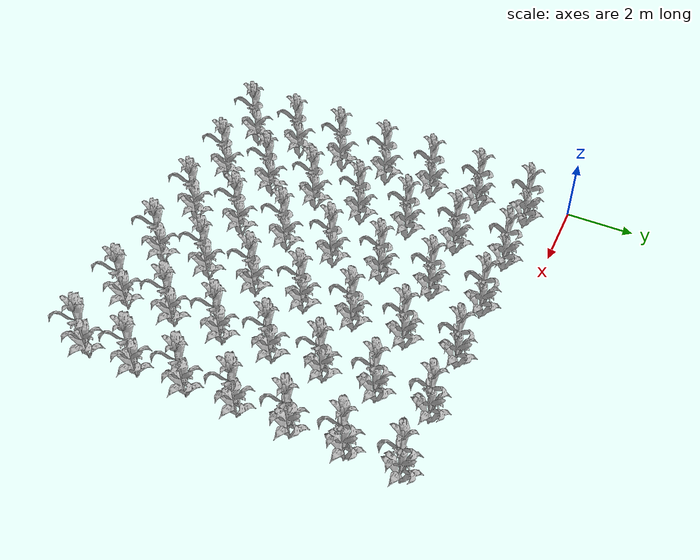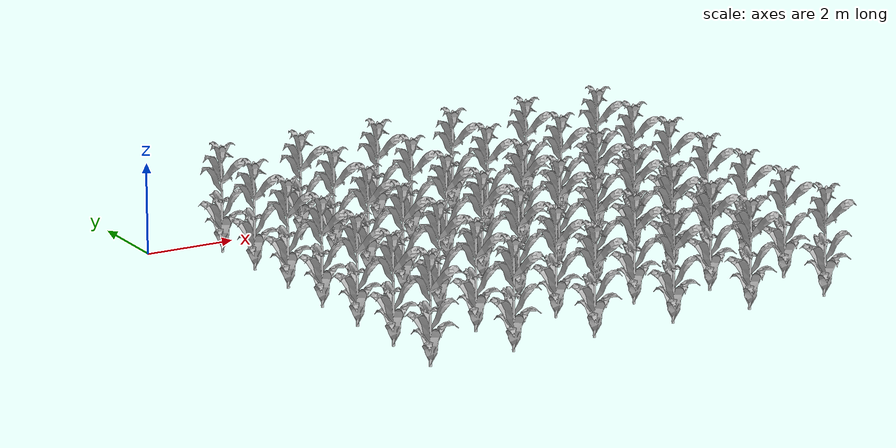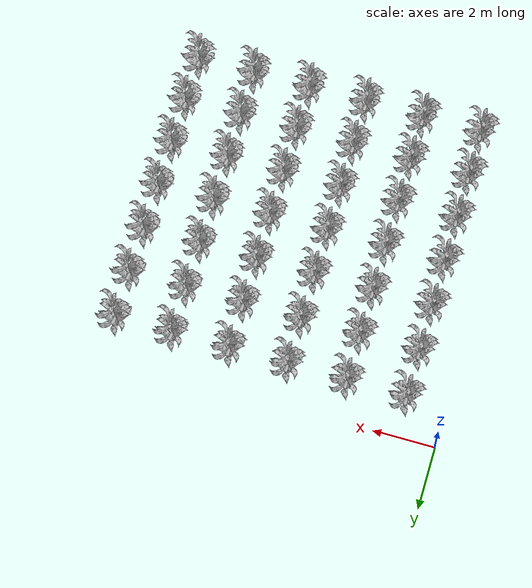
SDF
<sdf version="1.7">
 <world name="default">
  <model name="corn_1.2148646860063206_-10.0">
   <static>1</static>
   <link name="link">
    <inertial>
     <mass>0.2</mass>
     <inertia>
      <ixx>0.166667</ixx>
      <ixy>0</ixy>
      <ixz>0</ixz>
      <iyy>0.166667</iyy>
      <iyz>0</iyz>
      <izz>0.166667</izz>
     </inertia>
    </inertial>
    <collision name="collision">
     <geometry><mesh><uri>model://corn_2/meshes/corn.dae</uri><scale>1 1 1</scale></mesh></geometry>
     <surface>
      <friction><ode><mu>0.0</mu><mu2>0.0</mu2></ode></friction>
      <contact><ode><kp>0.0</kp><kd>0.0</kd><max_vel>0.0</max_vel><min_depth>0.002</min_depth></ode></contact>
     </surface>
    </collision>
    <visual name="visual">
     <geometry><mesh><uri>model://corn_2/meshes/corn.dae</uri><scale>1 1 1</scale></mesh></geometry>
    </visual>
    <velocity_decay><linear>0</linear><angular>0</angular></velocity_decay>
   </link>
   <pose>1.21487 -10 0.15 0 -0 0</pose>
  </model>
  <model name="corn_1.2148646860063206_-8.5">
   <static>1</static>
   <link name="link">
    <inertial>
     <mass>0.2</mass>
     <inertia>
      <ixx>0.166667</ixx>
      <ixy>0</ixy>
      <ixz>0</ixz>
      <iyy>0.166667</iyy>
      <iyz>0</iyz>
      <izz>0.166667</izz>
     </inertia>
    </inertial>
    <collision name="collision">
     <geometry><mesh><uri>model://corn_2/meshes/corn.dae</uri><scale>1 1 1</scale></mesh></geometry>
     <surface>
      <friction><ode><mu>0.0</mu><mu2>0.0</mu2></ode></friction>
      <contact><ode><kp>0.0</kp><kd>0.0</kd><max_vel>0.0</max_vel><min_depth>0.002</min_depth></ode></contact>
     </surface>
    </collision>
    <visual name="visual">
     <geometry><mesh><uri>model://corn_2/meshes/corn.dae</uri><scale>1 1 1</scale></mesh></geometry>
    </visual>
    <velocity_decay><linear>0</linear><angular>0</angular></velocity_decay>
   </link>
   <pose>1.21487 -8.5 0.15 0 -0 0</pose>
  </model>
  <model name="corn_1.2148646860063206_-7.0">
   <static>1</static>
   <link name="link">
    <inertial>
     <mass>0.2</mass>
     <inertia>
      <ixx>0.166667</ixx>
      <ixy>0</ixy>
      <ixz>0</ixz>
      <iyy>0.166667</iyy>
      <iyz>0</iyz>
      <izz>0.166667</izz>
     </inertia>
    </inertial>
    <collision name="collision">
     <geometry><mesh><uri>model://corn_2/meshes/corn.dae</uri><scale>1 1 1</scale></mesh></geometry>
     <surface>
      <friction><ode><mu>0.0</mu><mu2>0.0</mu2></ode></friction>
      <contact><ode><kp>0.0</kp><kd>0.0</kd><max_vel>0.0</max_vel><min_depth>0.002</min_depth></ode></contact>
     </surface>
    </collision>
    <visual name="visual">
     <geometry><mesh><uri>model://corn_2/meshes/corn.dae</uri><scale>1 1 1</scale></mesh></geometry>
    </visual>
    <velocity_decay><linear>0</linear><angular>0</angular></velocity_decay>
   </link>
   <pose>1.21487 -7 0.15 0 -0 0</pose>
  </model>
  <model name="corn_1.2148646860063206_-5.5">
   <static>1</static>
   <link name="link">
    <inertial>
     <mass>0.2</mass>
     <inertia>
      <ixx>0.166667</ixx>
      <ixy>0</ixy>
      <ixz>0</ixz>
      <iyy>0.166667</iyy>
      <iyz>0</iyz>
      <izz>0.166667</izz>
     </inertia>
    </inertial>
    <collision name="collision">
     <geometry><mesh><uri>model://corn_2/meshes/corn.dae</uri><scale>1 1 1</scale></mesh></geometry>
     <surface>
      <friction><ode><mu>0.0</mu><mu2>0.0</mu2></ode></friction>
      <contact><ode><kp>0.0</kp><kd>0.0</kd><max_vel>0.0</max_vel><min_depth>0.002</min_depth></ode></contact>
     </surface>
    </collision>
    <visual name="visual">
     <geometry><mesh><uri>model://corn_2/meshes/corn.dae</uri><scale>1 1 1</scale></mesh></geometry>
    </visual>
    <velocity_decay><linear>0</linear><angular>0</angular></velocity_decay>
   </link>
   <pose>1.21487 -5.5 0.15 0 -0 0</pose>
  </model>
  <model name="corn_1.2148646860063206_-4.0">
   <static>1</static>
   <link name="link">
    <inertial>
     <mass>0.2</mass>
     <inertia>
      <ixx>0.166667</ixx>
      <ixy>0</ixy>
      <ixz>0</ixz>
      <iyy>0.166667</iyy>
      <iyz>0</iyz>
      <izz>0.166667</izz>
     </inertia>
    </inertial>
    <collision name="collision">
     <geometry><mesh><uri>model://corn_2/meshes/corn.dae</uri><scale>1 1 1</scale></mesh></geometry>
     <surface>
      <friction><ode><mu>0.0</mu><mu2>0.0</mu2></ode></friction>
      <contact><ode><kp>0.0</kp><kd>0.0</kd><max_vel>0.0</max_vel><min_depth>0.002</min_depth></ode></contact>
     </surface>
    </collision>
    <visual name="visual">
     <geometry><mesh><uri>model://corn_2/meshes/corn.dae</uri><scale>1 1 1</scale></mesh></geometry>
    </visual>
    <velocity_decay><linear>0</linear><angular>0</angular></velocity_decay>
   </link>
   <pose>1.21487 -4 0.15 0 -0 0</pose>
  </model>
  <model name="corn_1.2148646860063206_-2.5">
   <static>1</static>
   <link name="link">
    <inertial>
     <mass>0.2</mass>
     <inertia>
      <ixx>0.166667</ixx>
      <ixy>0</ixy>
      <ixz>0</ixz>
      <iyy>0.166667</iyy>
      <iyz>0</iyz>
      <izz>0.166667</izz>
     </inertia>
    </inertial>
    <collision name="collision">
     <geometry><mesh><uri>model://corn_2/meshes/corn.dae</uri><scale>1 1 1</scale></mesh></geometry>
     <surface>
      <friction><ode><mu>0.0</mu><mu2>0.0</mu2></ode></friction>
      <contact><ode><kp>0.0</kp><kd>0.0</kd><max_vel>0.0</max_vel><min_depth>0.002</min_depth></ode></contact>
     </surface>
    </collision>
    <visual name="visual">
     <geometry><mesh><uri>model://corn_2/meshes/corn.dae</uri><scale>1 1 1</scale></mesh></geometry>
    </visual>
    <velocity_decay><linear>0</linear><angular>0</angular></velocity_decay>
   </link>
   <pose>1.21487 -2.5 0.15 0 -0 0</pose>
  </model>
  <model name="corn_1.2148646860063206_-1.0">
   <static>1</static>
   <link name="link">
    <inertial>
     <mass>0.2</mass>
     <inertia>
      <ixx>0.166667</ixx>
      <ixy>0</ixy>
      <ixz>0</ixz>
      <iyy>0.166667</iyy>
      <iyz>0</iyz>
      <izz>0.166667</izz>
     </inertia>
    </inertial>
    <collision name="collision">
     <geometry><mesh><uri>model://corn_2/meshes/corn.dae</uri><scale>1 1 1</scale></mesh></geometry>
     <surface>
      <friction><ode><mu>0.0</mu><mu2>0.0</mu2></ode></friction>
      <contact><ode><kp>0.0</kp><kd>0.0</kd><max_vel>0.0</max_vel><min_depth>0.002</min_depth></ode></contact>
     </surface>
    </collision>
    <visual name="visual">
     <geometry><mesh><uri>model://corn_2/meshes/corn.dae</uri><scale>1 1 1</scale></mesh></geometry>
    </visual>
    <velocity_decay><linear>0</linear><angular>0</angular></velocity_decay>
   </link>
   <pose>1.21487 -1 0.15 0 -0 0</pose>
  </model>
  <model name="corn_3.1126727651393438_-10.0">
   <static>1</static>
   <link name="link">
    <inertial>
     <mass>0.2</mass>
     <inertia>
      <ixx>0.166667</ixx>
      <ixy>0</ixy>
      <ixz>0</ixz>
      <iyy>0.166667</iyy>
      <iyz>0</iyz>
      <izz>0.166667</izz>
     </inertia>
    </inertial>
    <collision name="collision">
     <geometry><mesh><uri>model://corn_2/meshes/corn.dae</uri><scale>1 1 1</scale></mesh></geometry>
     <surface>
      <friction><ode><mu>0.0</mu><mu2>0.0</mu2></ode></friction>
      <contact><ode><kp>0.0</kp><kd>0.0</kd><max_vel>0.0</max_vel><min_depth>0.002</min_depth></ode></contact>
     </surface>
    </collision>
    <visual name="visual">
     <geometry><mesh><uri>model://corn_2/meshes/corn.dae</uri><scale>1 1 1</scale></mesh></geometry>
    </visual>
    <velocity_decay><linear>0</linear><angular>0</angular></velocity_decay>
   </link>
   <pose>3.11267 -10 0.15 0 -0 0</pose>
  </model>
  <model name="corn_3.1126727651393438_-8.5">
   <static>1</static>
   <link name="link">
    <inertial>
     <mass>0.2</mass>
     <inertia>
      <ixx>0.166667</ixx>
      <ixy>0</ixy>
      <ixz>0</ixz>
      <iyy>0.166667</iyy>
      <iyz>0</iyz>
      <izz>0.166667</izz>
     </inertia>
    </inertial>
    <collision name="collision">
     <geometry><mesh><uri>model://corn_2/meshes/corn.dae</uri><scale>1 1 1</scale></mesh></geometry>
     <surface>
      <friction><ode><mu>0.0</mu><mu2>0.0</mu2></ode></friction>
      <contact><ode><kp>0.0</kp><kd>0.0</kd><max_vel>0.0</max_vel><min_depth>0.002</min_depth></ode></contact>
     </surface>
    </collision>
    <visual name="visual">
     <geometry><mesh><uri>model://corn_2/meshes/corn.dae</uri><scale>1 1 1</scale></mesh></geometry>
    </visual>
    <velocity_decay><linear>0</linear><angular>0</angular></velocity_decay>
   </link>
   <pose>3.11267 -8.5 0.15 0 -0 0</pose>
  </model>
  <model name="corn_3.1126727651393438_-7.0">
   <static>1</static>
   <link name="link">
    <inertial>
     <mass>0.2</mass>
     <inertia>
      <ixx>0.166667</ixx>
      <ixy>0</ixy>
      <ixz>0</ixz>
      <iyy>0.166667</iyy>
      <iyz>0</iyz>
      <izz>0.166667</izz>
     </inertia>
    </inertial>
    <collision name="collision">
     <geometry><mesh><uri>model://corn_2/meshes/corn.dae</uri><scale>1 1 1</scale></mesh></geometry>
     <surface>
      <friction><ode><mu>0.0</mu><mu2>0.0</mu2></ode></friction>
      <contact><ode><kp>0.0</kp><kd>0.0</kd><max_vel>0.0</max_vel><min_depth>0.002</min_depth></ode></contact>
     </surface>
    </collision>
    <visual name="visual">
     <geometry><mesh><uri>model://corn_2/meshes/corn.dae</uri><scale>1 1 1</scale></mesh></geometry>
    </visual>
    <velocity_decay><linear>0</linear><angular>0</angular></velocity_decay>
   </link>
   <pose>3.11267 -7 0.15 0 -0 0</pose>
  </model>
  <model name="corn_3.1126727651393438_-5.5">
   <static>1</static>
   <link name="link">
    <inertial>
     <mass>0.2</mass>
     <inertia>
      <ixx>0.166667</ixx>
      <ixy>0</ixy>
      <ixz>0</ixz>
      <iyy>0.166667</iyy>
      <iyz>0</iyz>
      <izz>0.166667</izz>
     </inertia>
    </inertial>
    <collision name="collision">
     <geometry><mesh><uri>model://corn_2/meshes/corn.dae</uri><scale>1 1 1</scale></mesh></geometry>
     <surface>
      <friction><ode><mu>0.0</mu><mu2>0.0</mu2></ode></friction>
      <contact><ode><kp>0.0</kp><kd>0.0</kd><max_vel>0.0</max_vel><min_depth>0.002</min_depth></ode></contact>
     </surface>
    </collision>
    <visual name="visual">
     <geometry><mesh><uri>model://corn_2/meshes/corn.dae</uri><scale>1 1 1</scale></mesh></geometry>
    </visual>
    <velocity_decay><linear>0</linear><angular>0</angular></velocity_decay>
   </link>
   <pose>3.11267 -5.5 0.15 0 -0 0</pose>
  </model>
  <model name="corn_3.1126727651393438_-4.0">
   <static>1</static>
   <link name="link">
    <inertial>
     <mass>0.2</mass>
     <inertia>
      <ixx>0.166667</ixx>
      <ixy>0</ixy>
      <ixz>0</ixz>
      <iyy>0.166667</iyy>
      <iyz>0</iyz>
      <izz>0.166667</izz>
     </inertia>
    </inertial>
    <collision name="collision">
     <geometry><mesh><uri>model://corn_2/meshes/corn.dae</uri><scale>1 1 1</scale></mesh></geometry>
     <surface>
      <friction><ode><mu>0.0</mu><mu2>0.0</mu2></ode></friction>
      <contact><ode><kp>0.0</kp><kd>0.0</kd><max_vel>0.0</max_vel><min_depth>0.002</min_depth></ode></contact>
     </surface>
    </collision>
    <visual name="visual">
     <geometry><mesh><uri>model://corn_2/meshes/corn.dae</uri><scale>1 1 1</scale></mesh></geometry>
    </visual>
    <velocity_decay><linear>0</linear><angular>0</angular></velocity_decay>
   </link>
   <pose>3.11267 -4 0.15 0 -0 0</pose>
  </model>
  <model name="corn_3.1126727651393438_-2.5">
   <static>1</static>
   <link name="link">
    <inertial>
     <mass>0.2</mass>
     <inertia>
      <ixx>0.166667</ixx>
      <ixy>0</ixy>
      <ixz>0</ixz>
      <iyy>0.166667</iyy>
      <iyz>0</iyz>
      <izz>0.166667</izz>
     </inertia>
    </inertial>
    <collision name="collision">
     <geometry><mesh><uri>model://corn_2/meshes/corn.dae</uri><scale>1 1 1</scale></mesh></geometry>
     <surface>
      <friction><ode><mu>0.0</mu><mu2>0.0</mu2></ode></friction>
      <contact><ode><kp>0.0</kp><kd>0.0</kd><max_vel>0.0</max_vel><min_depth>0.002</min_depth></ode></contact>
     </surface>
    </collision>
    <visual name="visual">
     <geometry><mesh><uri>model://corn_2/meshes/corn.dae</uri><scale>1 1 1</scale></mesh></geometry>
    </visual>
    <velocity_decay><linear>0</linear><angular>0</angular></velocity_decay>
   </link>
   <pose>3.11267 -2.5 0.15 0 -0 0</pose>
  </model>
  <model name="corn_3.1126727651393438_-1.0">
   <static>1</static>
   <link name="link">
    <inertial>
     <mass>0.2</mass>
     <inertia>
      <ixx>0.166667</ixx>
      <ixy>0</ixy>
      <ixz>0</ixz>
      <iyy>0.166667</iyy>
      <iyz>0</iyz>
      <izz>0.166667</izz>
     </inertia>
    </inertial>
    <collision name="collision">
     <geometry><mesh><uri>model://corn_2/meshes/corn.dae</uri><scale>1 1 1</scale></mesh></geometry>
     <surface>
      <friction><ode><mu>0.0</mu><mu2>0.0</mu2></ode></friction>
      <contact><ode><kp>0.0</kp><kd>0.0</kd><max_vel>0.0</max_vel><min_depth>0.002</min_depth></ode></contact>
     </surface>
    </collision>
    <visual name="visual">
     <geometry><mesh><uri>model://corn_2/meshes/corn.dae</uri><scale>1 1 1</scale></mesh></geometry>
    </visual>
    <velocity_decay><linear>0</linear><angular>0</angular></velocity_decay>
   </link>
   <pose>3.11267 -1 0.15 0 -0 0</pose>
  </model>
  <model name="corn_4.995110941804327_-10.0">
   <static>1</static>
   <link name="link">
    <inertial>
     <mass>0.2</mass>
     <inertia>
      <ixx>0.166667</ixx>
      <ixy>0</ixy>
      <ixz>0</ixz>
      <iyy>0.166667</iyy>
      <iyz>0</iyz>
      <izz>0.166667</izz>
     </inertia>
    </inertial>
    <collision name="collision">
     <geometry><mesh><uri>model://corn_2/meshes/corn.dae</uri><scale>1 1 1</scale></mesh></geometry>
     <surface>
      <friction><ode><mu>0.0</mu><mu2>0.0</mu2></ode></friction>
      <contact><ode><kp>0.0</kp><kd>0.0</kd><max_vel>0.0</max_vel><min_depth>0.002</min_depth></ode></contact>
     </surface>
    </collision>
    <visual name="visual">
     <geometry><mesh><uri>model://corn_2/meshes/corn.dae</uri><scale>1 1 1</scale></mesh></geometry>
    </visual>
    <velocity_decay><linear>0</linear><angular>0</angular></velocity_decay>
   </link>
   <pose>4.99511 -10 0.15 0 -0 0</pose>
  </model>
  <model name="corn_4.995110941804327_-8.5">
   <static>1</static>
   <link name="link">
    <inertial>
     <mass>0.2</mass>
     <inertia>
      <ixx>0.166667</ixx>
      <ixy>0</ixy>
      <ixz>0</ixz>
      <iyy>0.166667</iyy>
      <iyz>0</iyz>
      <izz>0.166667</izz>
     </inertia>
    </inertial>
    <collision name="collision">
     <geometry><mesh><uri>model://corn_2/meshes/corn.dae</uri><scale>1 1 1</scale></mesh></geometry>
     <surface>
      <friction><ode><mu>0.0</mu><mu2>0.0</mu2></ode></friction>
      <contact><ode><kp>0.0</kp><kd>0.0</kd><max_vel>0.0</max_vel><min_depth>0.002</min_depth></ode></contact>
     </surface>
    </collision>
    <visual name="visual">
     <geometry><mesh><uri>model://corn_2/meshes/corn.dae</uri><scale>1 1 1</scale></mesh></geometry>
    </visual>
    <velocity_decay><linear>0</linear><angular>0</angular></velocity_decay>
   </link>
   <pose>4.99511 -8.5 0.15 0 -0 0</pose>
  </model>
  <model name="corn_4.995110941804327_-7.0">
   <static>1</static>
   <link name="link">
    <inertial>
     <mass>0.2</mass>
     <inertia>
      <ixx>0.166667</ixx>
      <ixy>0</ixy>
      <ixz>0</ixz>
      <iyy>0.166667</iyy>
      <iyz>0</iyz>
      <izz>0.166667</izz>
     </inertia>
    </inertial>
    <collision name="collision">
     <geometry><mesh><uri>model://corn_2/meshes/corn.dae</uri><scale>1 1 1</scale></mesh></geometry>
     <surface>
      <friction><ode><mu>0.0</mu><mu2>0.0</mu2></ode></friction>
      <contact><ode><kp>0.0</kp><kd>0.0</kd><max_vel>0.0</max_vel><min_depth>0.002</min_depth></ode></contact>
     </surface>
    </collision>
    <visual name="visual">
     <geometry><mesh><uri>model://corn_2/meshes/corn.dae</uri><scale>1 1 1</scale></mesh></geometry>
    </visual>
    <velocity_decay><linear>0</linear><angular>0</angular></velocity_decay>
   </link>
   <pose>4.99511 -7 0.15 0 -0 0</pose>
  </model>
  <model name="corn_4.995110941804327_-5.5">
   <static>1</static>
   <link name="link">
    <inertial>
     <mass>0.2</mass>
     <inertia>
      <ixx>0.166667</ixx>
      <ixy>0</ixy>
      <ixz>0</ixz>
      <iyy>0.166667</iyy>
      <iyz>0</iyz>
      <izz>0.166667</izz>
     </inertia>
    </inertial>
    <collision name="collision">
     <geometry><mesh><uri>model://corn_2/meshes/corn.dae</uri><scale>1 1 1</scale></mesh></geometry>
     <surface>
      <friction><ode><mu>0.0</mu><mu2>0.0</mu2></ode></friction>
      <contact><ode><kp>0.0</kp><kd>0.0</kd><max_vel>0.0</max_vel><min_depth>0.002</min_depth></ode></contact>
     </surface>
    </collision>
    <visual name="visual">
     <geometry><mesh><uri>model://corn_2/meshes/corn.dae</uri><scale>1 1 1</scale></mesh></geometry>
    </visual>
    <velocity_decay><linear>0</linear><angular>0</angular></velocity_decay>
   </link>
   <pose>4.99511 -5.5 0.15 0 -0 0</pose>
  </model>
  <model name="corn_4.995110941804327_-4.0">
   <static>1</static>
   <link name="link">
    <inertial>
     <mass>0.2</mass>
     <inertia>
      <ixx>0.166667</ixx>
      <ixy>0</ixy>
      <ixz>0</ixz>
      <iyy>0.166667</iyy>
      <iyz>0</iyz>
      <izz>0.166667</izz>
     </inertia>
    </inertial>
    <collision name="collision">
     <geometry><mesh><uri>model://corn_2/meshes/corn.dae</uri><scale>1 1 1</scale></mesh></geometry>
     <surface>
      <friction><ode><mu>0.0</mu><mu2>0.0</mu2></ode></friction>
      <contact><ode><kp>0.0</kp><kd>0.0</kd><max_vel>0.0</max_vel><min_depth>0.002</min_depth></ode></contact>
     </surface>
    </collision>
    <visual name="visual">
     <geometry><mesh><uri>model://corn_2/meshes/corn.dae</uri><scale>1 1 1</scale></mesh></geometry>
    </visual>
    <velocity_decay><linear>0</linear><angular>0</angular></velocity_decay>
   </link>
   <pose>4.99511 -4 0.15 0 -0 0</pose>
  </model>
  <model name="corn_4.995110941804327_-2.5">
   <static>1</static>
   <link name="link">
    <inertial>
     <mass>0.2</mass>
     <inertia>
      <ixx>0.166667</ixx>
      <ixy>0</ixy>
      <ixz>0</ixz>
      <iyy>0.166667</iyy>
      <iyz>0</iyz>
      <izz>0.166667</izz>
     </inertia>
    </inertial>
    <collision name="collision">
     <geometry><mesh><uri>model://corn_2/meshes/corn.dae</uri><scale>1 1 1</scale></mesh></geometry>
     <surface>
      <friction><ode><mu>0.0</mu><mu2>0.0</mu2></ode></friction>
      <contact><ode><kp>0.0</kp><kd>0.0</kd><max_vel>0.0</max_vel><min_depth>0.002</min_depth></ode></contact>
     </surface>
    </collision>
    <visual name="visual">
     <geometry><mesh><uri>model://corn_2/meshes/corn.dae</uri><scale>1 1 1</scale></mesh></geometry>
    </visual>
    <velocity_decay><linear>0</linear><angular>0</angular></velocity_decay>
   </link>
   <pose>4.99511 -2.5 0.15 0 -0 0</pose>
  </model>
  <model name="corn_4.995110941804327_-1.0">
   <static>1</static>
   <link name="link">
    <inertial>
     <mass>0.2</mass>
     <inertia>
      <ixx>0.166667</ixx>
      <ixy>0</ixy>
      <ixz>0</ixz>
      <iyy>0.166667</iyy>
      <iyz>0</iyz>
      <izz>0.166667</izz>
     </inertia>
    </inertial>
    <collision name="collision">
     <geometry><mesh><uri>model://corn_2/meshes/corn.dae</uri><scale>1 1 1</scale></mesh></geometry>
     <surface>
      <friction><ode><mu>0.0</mu><mu2>0.0</mu2></ode></friction>
      <contact><ode><kp>0.0</kp><kd>0.0</kd><max_vel>0.0</max_vel><min_depth>0.002</min_depth></ode></contact>
     </surface>
    </collision>
    <visual name="visual">
     <geometry><mesh><uri>model://corn_2/meshes/corn.dae</uri><scale>1 1 1</scale></mesh></geometry>
    </visual>
    <velocity_decay><linear>0</linear><angular>0</angular></velocity_decay>
   </link>
   <pose>4.99511 -1 0.15 0 -0 0</pose>
  </model>
  <model name="corn_6.862271810291748_-10.0">
   <static>1</static>
   <link name="link">
    <inertial>
     <mass>0.2</mass>
     <inertia>
      <ixx>0.166667</ixx>
      <ixy>0</ixy>
      <ixz>0</ixz>
      <iyy>0.166667</iyy>
      <iyz>0</iyz>
      <izz>0.166667</izz>
     </inertia>
    </inertial>
    <collision name="collision">
     <geometry><mesh><uri>model://corn_2/meshes/corn.dae</uri><scale>1 1 1</scale></mesh></geometry>
     <surface>
      <friction><ode><mu>0.0</mu><mu2>0.0</mu2></ode></friction>
      <contact><ode><kp>0.0</kp><kd>0.0</kd><max_vel>0.0</max_vel><min_depth>0.002</min_depth></ode></contact>
     </surface>
    </collision>
    <visual name="visual">
     <geometry><mesh><uri>model://corn_2/meshes/corn.dae</uri><scale>1 1 1</scale></mesh></geometry>
    </visual>
    <velocity_decay><linear>0</linear><angular>0</angular></velocity_decay>
   </link>
   <pose>6.86227 -10 0.15 0 -0 0</pose>
  </model>
  <model name="corn_6.862271810291748_-8.5">
   <static>1</static>
   <link name="link">
    <inertial>
     <mass>0.2</mass>
     <inertia>
      <ixx>0.166667</ixx>
      <ixy>0</ixy>
      <ixz>0</ixz>
      <iyy>0.166667</iyy>
      <iyz>0</iyz>
      <izz>0.166667</izz>
     </inertia>
    </inertial>
    <collision name="collision">
     <geometry><mesh><uri>model://corn_2/meshes/corn.dae</uri><scale>1 1 1</scale></mesh></geometry>
     <surface>
      <friction><ode><mu>0.0</mu><mu2>0.0</mu2></ode></friction>
      <contact><ode><kp>0.0</kp><kd>0.0</kd><max_vel>0.0</max_vel><min_depth>0.002</min_depth></ode></contact>
     </surface>
    </collision>
    <visual name="visual">
     <geometry><mesh><uri>model://corn_2/meshes/corn.dae</uri><scale>1 1 1</scale></mesh></geometry>
    </visual>
    <velocity_decay><linear>0</linear><angular>0</angular></velocity_decay>
   </link>
   <pose>6.86227 -8.5 0.15 0 -0 0</pose>
  </model>
  <model name="corn_6.862271810291748_-7.0">
   <static>1</static>
   <link name="link">
    <inertial>
     <mass>0.2</mass>
     <inertia>
      <ixx>0.166667</ixx>
      <ixy>0</ixy>
      <ixz>0</ixz>
      <iyy>0.166667</iyy>
      <iyz>0</iyz>
      <izz>0.166667</izz>
     </inertia>
    </inertial>
    <collision name="collision">
     <geometry><mesh><uri>model://corn_2/meshes/corn.dae</uri><scale>1 1 1</scale></mesh></geometry>
     <surface>
      <friction><ode><mu>0.0</mu><mu2>0.0</mu2></ode></friction>
      <contact><ode><kp>0.0</kp><kd>0.0</kd><max_vel>0.0</max_vel><min_depth>0.002</min_depth></ode></contact>
     </surface>
    </collision>
    <visual name="visual">
     <geometry><mesh><uri>model://corn_2/meshes/corn.dae</uri><scale>1 1 1</scale></mesh></geometry>
    </visual>
    <velocity_decay><linear>0</linear><angular>0</angular></velocity_decay>
   </link>
   <pose>6.86227 -7 0.15 0 -0 0</pose>
  </model>
  <model name="corn_6.862271810291748_-5.5">
   <static>1</static>
   <link name="link">
    <inertial>
     <mass>0.2</mass>
     <inertia>
      <ixx>0.166667</ixx>
      <ixy>0</ixy>
      <ixz>0</ixz>
      <iyy>0.166667</iyy>
      <iyz>0</iyz>
      <izz>0.166667</izz>
     </inertia>
    </inertial>
    <collision name="collision">
     <geometry><mesh><uri>model://corn_2/meshes/corn.dae</uri><scale>1 1 1</scale></mesh></geometry>
     <surface>
      <friction><ode><mu>0.0</mu><mu2>0.0</mu2></ode></friction>
      <contact><ode><kp>0.0</kp><kd>0.0</kd><max_vel>0.0</max_vel><min_depth>0.002</min_depth></ode></contact>
     </surface>
    </collision>
    <visual name="visual">
     <geometry><mesh><uri>model://corn_2/meshes/corn.dae</uri><scale>1 1 1</scale></mesh></geometry>
    </visual>
    <velocity_decay><linear>0</linear><angular>0</angular></velocity_decay>
   </link>
   <pose>6.86227 -5.5 0.15 0 -0 0</pose>
  </model>
  <model name="corn_6.862271810291748_-4.0">
   <static>1</static>
   <link name="link">
    <inertial>
     <mass>0.2</mass>
     <inertia>
      <ixx>0.166667</ixx>
      <ixy>0</ixy>
      <ixz>0</ixz>
      <iyy>0.166667</iyy>
      <iyz>0</iyz>
      <izz>0.166667</izz>
     </inertia>
    </inertial>
    <collision name="collision">
     <geometry><mesh><uri>model://corn_2/meshes/corn.dae</uri><scale>1 1 1</scale></mesh></geometry>
     <surface>
      <friction><ode><mu>0.0</mu><mu2>0.0</mu2></ode></friction>
      <contact><ode><kp>0.0</kp><kd>0.0</kd><max_vel>0.0</max_vel><min_depth>0.002</min_depth></ode></contact>
     </surface>
    </collision>
    <visual name="visual">
     <geometry><mesh><uri>model://corn_2/meshes/corn.dae</uri><scale>1 1 1</scale></mesh></geometry>
    </visual>
    <velocity_decay><linear>0</linear><angular>0</angular></velocity_decay>
   </link>
   <pose>6.86227 -4 0.15 0 -0 0</pose>
  </model>
  <model name="corn_6.862271810291748_-2.5">
   <static>1</static>
   <link name="link">
    <inertial>
     <mass>0.2</mass>
     <inertia>
      <ixx>0.166667</ixx>
      <ixy>0</ixy>
      <ixz>0</ixz>
      <iyy>0.166667</iyy>
      <iyz>0</iyz>
      <izz>0.166667</izz>
     </inertia>
    </inertial>
    <collision name="collision">
     <geometry><mesh><uri>model://corn_2/meshes/corn.dae</uri><scale>1 1 1</scale></mesh></geometry>
     <surface>
      <friction><ode><mu>0.0</mu><mu2>0.0</mu2></ode></friction>
      <contact><ode><kp>0.0</kp><kd>0.0</kd><max_vel>0.0</max_vel><min_depth>0.002</min_depth></ode></contact>
     </surface>
    </collision>
    <visual name="visual">
     <geometry><mesh><uri>model://corn_2/meshes/corn.dae</uri><scale>1 1 1</scale></mesh></geometry>
    </visual>
    <velocity_decay><linear>0</linear><angular>0</angular></velocity_decay>
   </link>
   <pose>6.86227 -2.5 0.15 0 -0 0</pose>
  </model>
  <model name="corn_6.862271810291748_-1.0">
   <static>1</static>
   <link name="link">
    <inertial>
     <mass>0.2</mass>
     <inertia>
      <ixx>0.166667</ixx>
      <ixy>0</ixy>
      <ixz>0</ixz>
      <iyy>0.166667</iyy>
      <iyz>0</iyz>
      <izz>0.166667</izz>
     </inertia>
    </inertial>
    <collision name="collision">
     <geometry><mesh><uri>model://corn_2/meshes/corn.dae</uri><scale>1 1 1</scale></mesh></geometry>
     <surface>
      <friction><ode><mu>0.0</mu><mu2>0.0</mu2></ode></friction>
      <contact><ode><kp>0.0</kp><kd>0.0</kd><max_vel>0.0</max_vel><min_depth>0.002</min_depth></ode></contact>
     </surface>
    </collision>
    <visual name="visual">
     <geometry><mesh><uri>model://corn_2/meshes/corn.dae</uri><scale>1 1 1</scale></mesh></geometry>
    </visual>
    <velocity_decay><linear>0</linear><angular>0</angular></velocity_decay>
   </link>
   <pose>6.86227 -1 0.15 0 -0 0</pose>
  </model>
  <model name="corn_8.714247470056204_-10.0">
   <static>1</static>
   <link name="link">
    <inertial>
     <mass>0.2</mass>
     <inertia>
      <ixx>0.166667</ixx>
      <ixy>0</ixy>
      <ixz>0</ixz>
      <iyy>0.166667</iyy>
      <iyz>0</iyz>
      <izz>0.166667</izz>
     </inertia>
    </inertial>
    <collision name="collision">
     <geometry><mesh><uri>model://corn_2/meshes/corn.dae</uri><scale>1 1 1</scale></mesh></geometry>
     <surface>
      <friction><ode><mu>0.0</mu><mu2>0.0</mu2></ode></friction>
      <contact><ode><kp>0.0</kp><kd>0.0</kd><max_vel>0.0</max_vel><min_depth>0.002</min_depth></ode></contact>
     </surface>
    </collision>
    <visual name="visual">
     <geometry><mesh><uri>model://corn_2/meshes/corn.dae</uri><scale>1 1 1</scale></mesh></geometry>
    </visual>
    <velocity_decay><linear>0</linear><angular>0</angular></velocity_decay>
   </link>
   <pose>8.71425 -10 0.15 0 -0 0</pose>
  </model>
  <model name="corn_8.714247470056204_-8.5">
   <static>1</static>
   <link name="link">
    <inertial>
     <mass>0.2</mass>
     <inertia>
      <ixx>0.166667</ixx>
      <ixy>0</ixy>
      <ixz>0</ixz>
      <iyy>0.166667</iyy>
      <iyz>0</iyz>
      <izz>0.166667</izz>
     </inertia>
    </inertial>
    <collision name="collision">
     <geometry><mesh><uri>model://corn_2/meshes/corn.dae</uri><scale>1 1 1</scale></mesh></geometry>
     <surface>
      <friction><ode><mu>0.0</mu><mu2>0.0</mu2></ode></friction>
      <contact><ode><kp>0.0</kp><kd>0.0</kd><max_vel>0.0</max_vel><min_depth>0.002</min_depth></ode></contact>
     </surface>
    </collision>
    <visual name="visual">
     <geometry><mesh><uri>model://corn_2/meshes/corn.dae</uri><scale>1 1 1</scale></mesh></geometry>
    </visual>
    <velocity_decay><linear>0</linear><angular>0</angular></velocity_decay>
   </link>
   <pose>8.71425 -8.5 0.15 0 -0 0</pose>
  </model>
  <model name="corn_8.714247470056204_-7.0">
   <static>1</static>
   <link name="link">
    <inertial>
     <mass>0.2</mass>
     <inertia>
      <ixx>0.166667</ixx>
      <ixy>0</ixy>
      <ixz>0</ixz>
      <iyy>0.166667</iyy>
      <iyz>0</iyz>
      <izz>0.166667</izz>
     </inertia>
    </inertial>
    <collision name="collision">
     <geometry><mesh><uri>model://corn_2/meshes/corn.dae</uri><scale>1 1 1</scale></mesh></geometry>
     <surface>
      <friction><ode><mu>0.0</mu><mu2>0.0</mu2></ode></friction>
      <contact><ode><kp>0.0</kp><kd>0.0</kd><max_vel>0.0</max_vel><min_depth>0.002</min_depth></ode></contact>
     </surface>
    </collision>
    <visual name="visual">
     <geometry><mesh><uri>model://corn_2/meshes/corn.dae</uri><scale>1 1 1</scale></mesh></geometry>
    </visual>
    <velocity_decay><linear>0</linear><angular>0</angular></velocity_decay>
   </link>
   <pose>8.71425 -7 0.15 0 -0 0</pose>
  </model>
  <model name="corn_8.714247470056204_-5.5">
   <static>1</static>
   <link name="link">
    <inertial>
     <mass>0.2</mass>
     <inertia>
      <ixx>0.166667</ixx>
      <ixy>0</ixy>
      <ixz>0</ixz>
      <iyy>0.166667</iyy>
      <iyz>0</iyz>
      <izz>0.166667</izz>
     </inertia>
    </inertial>
    <collision name="collision">
     <geometry><mesh><uri>model://corn_2/meshes/corn.dae</uri><scale>1 1 1</scale></mesh></geometry>
     <surface>
      <friction><ode><mu>0.0</mu><mu2>0.0</mu2></ode></friction>
      <contact><ode><kp>0.0</kp><kd>0.0</kd><max_vel>0.0</max_vel><min_depth>0.002</min_depth></ode></contact>
     </surface>
    </collision>
    <visual name="visual">
     <geometry><mesh><uri>model://corn_2/meshes/corn.dae</uri><scale>1 1 1</scale></mesh></geometry>
    </visual>
    <velocity_decay><linear>0</linear><angular>0</angular></velocity_decay>
   </link>
   <pose>8.71425 -5.5 0.15 0 -0 0</pose>
  </model>
  <model name="corn_8.714247470056204_-4.0">
   <static>1</static>
   <link name="link">
    <inertial>
     <mass>0.2</mass>
     <inertia>
      <ixx>0.166667</ixx>
      <ixy>0</ixy>
      <ixz>0</ixz>
      <iyy>0.166667</iyy>
      <iyz>0</iyz>
      <izz>0.166667</izz>
     </inertia>
    </inertial>
    <collision name="collision">
     <geometry><mesh><uri>model://corn_2/meshes/corn.dae</uri><scale>1 1 1</scale></mesh></geometry>
     <surface>
      <friction><ode><mu>0.0</mu><mu2>0.0</mu2></ode></friction>
      <contact><ode><kp>0.0</kp><kd>0.0</kd><max_vel>0.0</max_vel><min_depth>0.002</min_depth></ode></contact>
     </surface>
    </collision>
    <visual name="visual">
     <geometry><mesh><uri>model://corn_2/meshes/corn.dae</uri><scale>1 1 1</scale></mesh></geometry>
    </visual>
    <velocity_decay><linear>0</linear><angular>0</angular></velocity_decay>
   </link>
   <pose>8.71425 -4 0.15 0 -0 0</pose>
  </model>
  <model name="corn_8.714247470056204_-2.5">
   <static>1</static>
   <link name="link">
    <inertial>
     <mass>0.2</mass>
     <inertia>
      <ixx>0.166667</ixx>
      <ixy>0</ixy>
      <ixz>0</ixz>
      <iyy>0.166667</iyy>
      <iyz>0</iyz>
      <izz>0.166667</izz>
     </inertia>
    </inertial>
    <collision name="collision">
     <geometry><mesh><uri>model://corn_2/meshes/corn.dae</uri><scale>1 1 1</scale></mesh></geometry>
     <surface>
      <friction><ode><mu>0.0</mu><mu2>0.0</mu2></ode></friction>
      <contact><ode><kp>0.0</kp><kd>0.0</kd><max_vel>0.0</max_vel><min_depth>0.002</min_depth></ode></contact>
     </surface>
    </collision>
    <visual name="visual">
     <geometry><mesh><uri>model://corn_2/meshes/corn.dae</uri><scale>1 1 1</scale></mesh></geometry>
    </visual>
    <velocity_decay><linear>0</linear><angular>0</angular></velocity_decay>
   </link>
   <pose>8.71425 -2.5 0.15 0 -0 0</pose>
  </model>
  <model name="corn_8.714247470056204_-1.0">
   <static>1</static>
   <link name="link">
    <inertial>
     <mass>0.2</mass>
     <inertia>
      <ixx>0.166667</ixx>
      <ixy>0</ixy>
      <ixz>0</ixz>
      <iyy>0.166667</iyy>
      <iyz>0</iyz>
      <izz>0.166667</izz>
     </inertia>
    </inertial>
    <collision name="collision">
     <geometry><mesh><uri>model://corn_2/meshes/corn.dae</uri><scale>1 1 1</scale></mesh></geometry>
     <surface>
      <friction><ode><mu>0.0</mu><mu2>0.0</mu2></ode></friction>
      <contact><ode><kp>0.0</kp><kd>0.0</kd><max_vel>0.0</max_vel><min_depth>0.002</min_depth></ode></contact>
     </surface>
    </collision>
    <visual name="visual">
     <geometry><mesh><uri>model://corn_2/meshes/corn.dae</uri><scale>1 1 1</scale></mesh></geometry>
    </visual>
    <velocity_decay><linear>0</linear><angular>0</angular></velocity_decay>
   </link>
   <pose>8.71425 -1 0.15 0 -0 0</pose>
  </model>
  <model name="corn_10.551129528193574_-10.0">
   <static>1</static>
   <link name="link">
    <inertial>
     <mass>0.2</mass>
     <inertia>
      <ixx>0.166667</ixx>
      <ixy>0</ixy>
      <ixz>0</ixz>
      <iyy>0.166667</iyy>
      <iyz>0</iyz>
      <izz>0.166667</izz>
     </inertia>
    </inertial>
    <collision name="collision">
     <geometry><mesh><uri>model://corn_2/meshes/corn.dae</uri><scale>1 1 1</scale></mesh></geometry>
     <surface>
      <friction><ode><mu>0.0</mu><mu2>0.0</mu2></ode></friction>
      <contact><ode><kp>0.0</kp><kd>0.0</kd><max_vel>0.0</max_vel><min_depth>0.002</min_depth></ode></contact>
     </surface>
    </collision>
    <visual name="visual">
     <geometry><mesh><uri>model://corn_2/meshes/corn.dae</uri><scale>1 1 1</scale></mesh></geometry>
    </visual>
    <velocity_decay><linear>0</linear><angular>0</angular></velocity_decay>
   </link>
   <pose>10.5511 -10 0.15 0 -0 0</pose>
  </model>
  <model name="corn_10.551129528193574_-8.5">
   <static>1</static>
   <link name="link">
    <inertial>
     <mass>0.2</mass>
     <inertia>
      <ixx>0.166667</ixx>
      <ixy>0</ixy>
      <ixz>0</ixz>
      <iyy>0.166667</iyy>
      <iyz>0</iyz>
      <izz>0.166667</izz>
     </inertia>
    </inertial>
    <collision name="collision">
     <geometry><mesh><uri>model://corn_2/meshes/corn.dae</uri><scale>1 1 1</scale></mesh></geometry>
     <surface>
      <friction><ode><mu>0.0</mu><mu2>0.0</mu2></ode></friction>
      <contact><ode><kp>0.0</kp><kd>0.0</kd><max_vel>0.0</max_vel><min_depth>0.002</min_depth></ode></contact>
     </surface>
    </collision>
    <visual name="visual">
     <geometry><mesh><uri>model://corn_2/meshes/corn.dae</uri><scale>1 1 1</scale></mesh></geometry>
    </visual>
    <velocity_decay><linear>0</linear><angular>0</angular></velocity_decay>
   </link>
   <pose>10.5511 -8.5 0.15 0 -0 0</pose>
  </model>
  <model name="corn_10.551129528193574_-7.0">
   <static>1</static>
   <link name="link">
    <inertial>
     <mass>0.2</mass>
     <inertia>
      <ixx>0.166667</ixx>
      <ixy>0</ixy>
      <ixz>0</ixz>
      <iyy>0.166667</iyy>
      <iyz>0</iyz>
      <izz>0.166667</izz>
     </inertia>
    </inertial>
    <collision name="collision">
     <geometry><mesh><uri>model://corn_2/meshes/corn.dae</uri><scale>1 1 1</scale></mesh></geometry>
     <surface>
      <friction><ode><mu>0.0</mu><mu2>0.0</mu2></ode></friction>
      <contact><ode><kp>0.0</kp><kd>0.0</kd><max_vel>0.0</max_vel><min_depth>0.002</min_depth></ode></contact>
     </surface>
    </collision>
    <visual name="visual">
     <geometry><mesh><uri>model://corn_2/meshes/corn.dae</uri><scale>1 1 1</scale></mesh></geometry>
    </visual>
    <velocity_decay><linear>0</linear><angular>0</angular></velocity_decay>
   </link>
   <pose>10.5511 -7 0.15 0 -0 0</pose>
  </model>
  <model name="corn_10.551129528193574_-5.5">
   <static>1</static>
   <link name="link">
    <inertial>
     <mass>0.2</mass>
     <inertia>
      <ixx>0.166667</ixx>
      <ixy>0</ixy>
      <ixz>0</ixz>
      <iyy>0.166667</iyy>
      <iyz>0</iyz>
      <izz>0.166667</izz>
     </inertia>
    </inertial>
    <collision name="collision">
     <geometry><mesh><uri>model://corn_2/meshes/corn.dae</uri><scale>1 1 1</scale></mesh></geometry>
     <surface>
      <friction><ode><mu>0.0</mu><mu2>0.0</mu2></ode></friction>
      <contact><ode><kp>0.0</kp><kd>0.0</kd><max_vel>0.0</max_vel><min_depth>0.002</min_depth></ode></contact>
     </surface>
    </collision>
    <visual name="visual">
     <geometry><mesh><uri>model://corn_2/meshes/corn.dae</uri><scale>1 1 1</scale></mesh></geometry>
    </visual>
    <velocity_decay><linear>0</linear><angular>0</angular></velocity_decay>
   </link>
   <pose>10.5511 -5.5 0.15 0 -0 0</pose>
  </model>
  <model name="corn_10.551129528193574_-4.0">
   <static>1</static>
   <link name="link">
    <inertial>
     <mass>0.2</mass>
     <inertia>
      <ixx>0.166667</ixx>
      <ixy>0</ixy>
      <ixz>0</ixz>
      <iyy>0.166667</iyy>
      <iyz>0</iyz>
      <izz>0.166667</izz>
     </inertia>
    </inertial>
    <collision name="collision">
     <geometry><mesh><uri>model://corn_2/meshes/corn.dae</uri><scale>1 1 1</scale></mesh></geometry>
     <surface>
      <friction><ode><mu>0.0</mu><mu2>0.0</mu2></ode></friction>
      <contact><ode><kp>0.0</kp><kd>0.0</kd><max_vel>0.0</max_vel><min_depth>0.002</min_depth></ode></contact>
     </surface>
    </collision>
    <visual name="visual">
     <geometry><mesh><uri>model://corn_2/meshes/corn.dae</uri><scale>1 1 1</scale></mesh></geometry>
    </visual>
    <velocity_decay><linear>0</linear><angular>0</angular></velocity_decay>
   </link>
   <pose>10.5511 -4 0.15 0 -0 0</pose>
  </model>
  <model name="corn_10.551129528193574_-2.5">
   <static>1</static>
   <link name="link">
    <inertial>
     <mass>0.2</mass>
     <inertia>
      <ixx>0.166667</ixx>
      <ixy>0</ixy>
      <ixz>0</ixz>
      <iyy>0.166667</iyy>
      <iyz>0</iyz>
      <izz>0.166667</izz>
     </inertia>
    </inertial>
    <collision name="collision">
     <geometry><mesh><uri>model://corn_2/meshes/corn.dae</uri><scale>1 1 1</scale></mesh></geometry>
     <surface>
      <friction><ode><mu>0.0</mu><mu2>0.0</mu2></ode></friction>
      <contact><ode><kp>0.0</kp><kd>0.0</kd><max_vel>0.0</max_vel><min_depth>0.002</min_depth></ode></contact>
     </surface>
    </collision>
    <visual name="visual">
     <geometry><mesh><uri>model://corn_2/meshes/corn.dae</uri><scale>1 1 1</scale></mesh></geometry>
    </visual>
    <velocity_decay><linear>0</linear><angular>0</angular></velocity_decay>
   </link>
   <pose>10.5511 -2.5 0.15 0 -0 0</pose>
  </model>
  <model name="corn_10.551129528193574_-1.0">
   <static>1</static>
   <link name="link">
    <inertial>
     <mass>0.2</mass>
     <inertia>
      <ixx>0.166667</ixx>
      <ixy>0</ixy>
      <ixz>0</ixz>
      <iyy>0.166667</iyy>
      <iyz>0</iyz>
      <izz>0.166667</izz>
     </inertia>
    </inertial>
    <collision name="collision">
     <geometry><mesh><uri>model://corn_2/meshes/corn.dae</uri><scale>1 1 1</scale></mesh></geometry>
     <surface>
      <friction><ode><mu>0.0</mu><mu2>0.0</mu2></ode></friction>
      <contact><ode><kp>0.0</kp><kd>0.0</kd><max_vel>0.0</max_vel><min_depth>0.002</min_depth></ode></contact>
     </surface>
    </collision>
    <visual name="visual">
     <geometry><mesh><uri>model://corn_2/meshes/corn.dae</uri><scale>1 1 1</scale></mesh></geometry>
    </visual>
    <velocity_decay><linear>0</linear><angular>0</angular></velocity_decay>
   </link>
   <pose>10.5511 -1 0.15 0 -0 0</pose>
  </model>
 </world>
</sdf>
